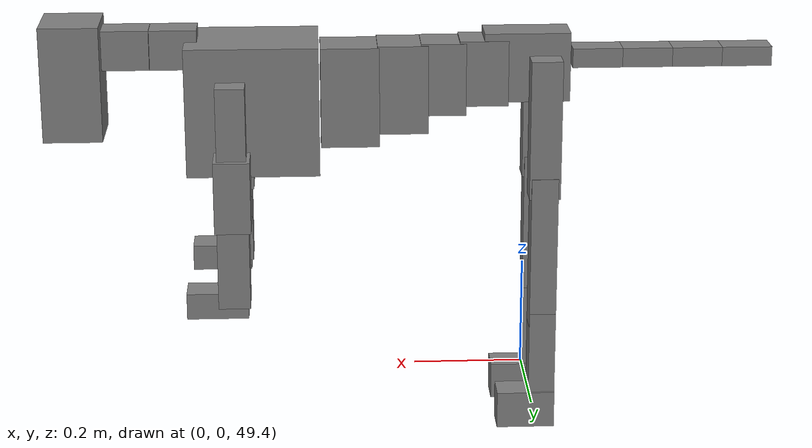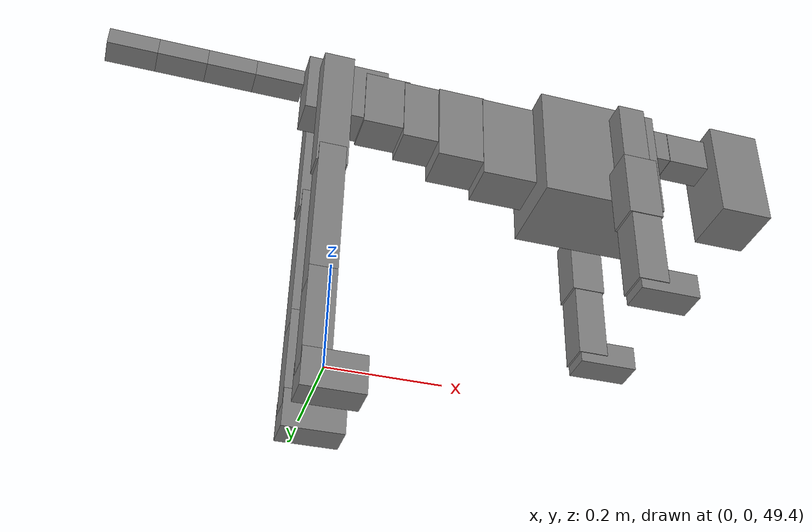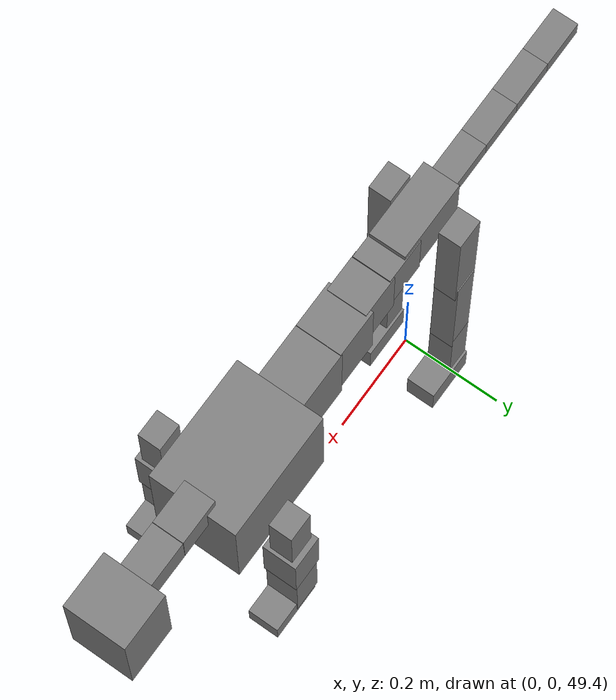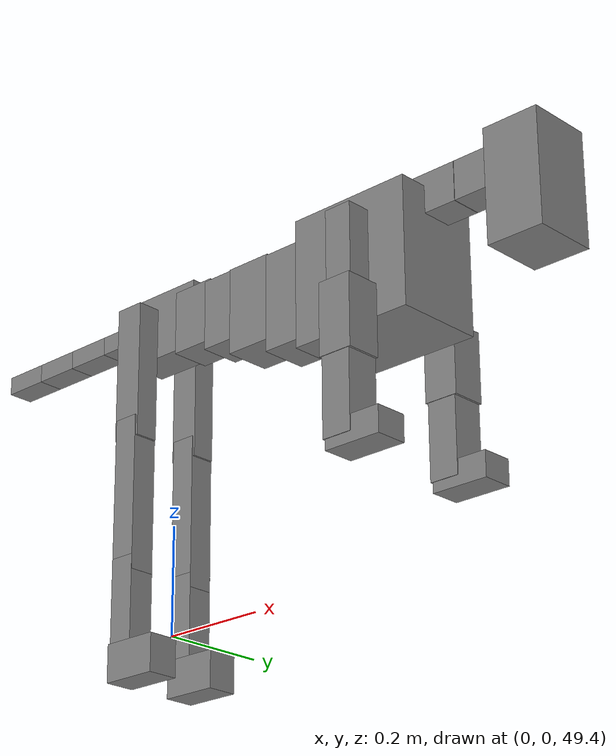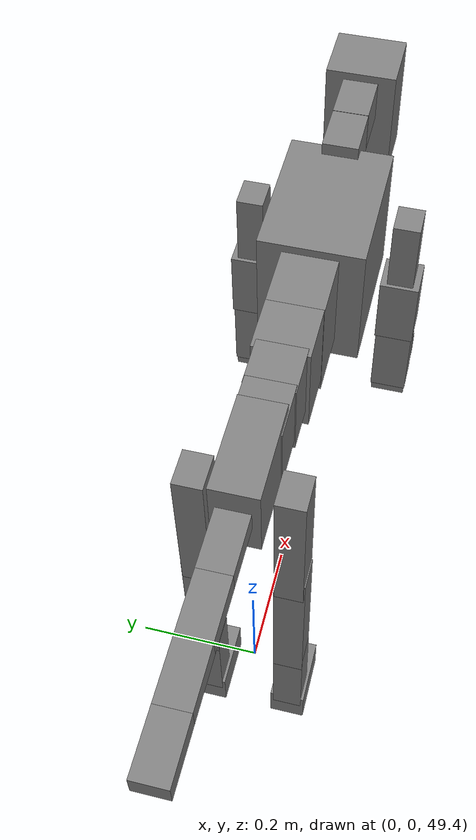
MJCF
<mujoco model="dog">

    <default>
        <joint armature="0.02" stiffness="1" damping="0.2" limited="true"/>
        <geom condim="3" friction="1 0.05 0.05" margin="0.01"/>
        <motor ctrllimited="true" ctrlrange="-1.0 1.0" forcelimited="true" gear="50"/>
    </default>

    <compiler inertiafromgeom="true" angle="radian"/>

    <option timestep="0.016" iterations="50" tolerance="1e-10" solver="Newton" jacobian="dense" cone="pyramidal"/>

    <size nconmax="20000" njmax="60000" nstack="5000000"/>
    <visual>
        <map force="0.1" zfar="30"/>
        <rgba haze="0.15 0.25 0.35 1"/>
        <quality shadowsize="2048"/>
        <global offwidth="800" offheight="800"/>
    </visual>

    <asset>
        <texture type="skybox" builtin="gradient" rgb1="0.3 0.5 0.7" rgb2="0 0 0" width="512" height="512"/>
        <texture name="texplane" type="2d" builtin="checker" rgb1=".2 .3 .4" rgb2=".1 0.15 0.2" width="512" height="512"
                 mark="cross" markrgb=".8 .8 .8"/>
        <texture name="texgeom" type="cube" builtin="flat" mark="cross" width="127" height="1278" rgb1="0.8 0.6 0.4"
                 rgb2="0.8 0.6 0.4" markrgb="1 1 1" random="0.01"/>

        <material name="matplane" reflectance="0.3" texture="texplane" texrepeat="1 1" texuniform="true"/>
        <material name="matgeom" texture="texgeom" texuniform="true" rgba="0.8 0.6 .4 1"/>
    </asset>

    <worldbody>
        <geom name="floor" pos="0 0 0" size="0 0 .25" type="plane" material="matplane" condim="3"/>

        <light directional="false" diffuse=".2 .2 .2" specular="0 0 0" pos="0 0 5" dir="0 0 -1" castshadow="false"/>
        <light mode="targetbodycom" target="torso" directional="false" diffuse=".8 .8 .8" specular="0.3 0.3 0.3"
               pos="0 0 4.0" dir="0 0 -1"/>

        <body name="root" pos="0 0 50">
            <freejoint name="root_1"/>
            <geom type="box" pos="0 0 -0.02" size="0.0774  0.0358  0.063" density="2030"/>

            <body name="spine1" pos="0.054 0 0">
                <joint name="spine1_y" axis="0 1 0" range="0 0.7" limited="true"/>
                <geom type="box" pos="0.02375 0 -0.03" size="0.04375  0.0375  0.05985" density="2030"/>

                <body name="spine2" pos="0.0612 0 0">
                    <joint name="spine2_y" axis="0 1 0" range="-0.15 0.15" limited="true"/>
                    <geom type="box" pos="0.03555  0  -0.04" size="0.04055  0.039  0.06615" density="2030"/>

                    <body name="spine3" pos="0.0730 0 0">
                        <joint name="spine3_y" axis="0 1 0" range="-0.15 0.15" limited="true"/>
                        <geom type="box" pos="0.03555  0  -0.057" size="0.04555  0.0445  0.081" density="2030"/>

                        <body name="spine4" pos="0.0780 0 0">
                            <joint name="spine4_y" axis="0 1 0" range="-0.15 0.15" limited="true"/>
                            <geom type="box" pos="0.05265  0  -0.07" size="0.05265  0.045  0.09135" density="2030"/>

                            <body name="torso" pos="0.1082 0 0">
                                <joint name="torso_y" axis="0 1 0" range="-0.15 0.15" limited="true"/>
                                <geom type="box" pos="0.11925  0  -0.085" size="0.11925  0.085  0.11745"
                                      density="2030"/>

                                <body name="neck1" pos="0.2160  0   0.0180">
                                    <joint name="neck1_y" axis="0 1 0" range="-1.2  -1" limited="true"/>
                                    <geom type="box" pos="0.0423  0  0" size="0.0423  0.03  0.036" density="2325"/>

                                    <body name="neck2" pos="0.0853  0  0">
                                        <joint name="neck2_y" axis="0 1 0" range="0.1  0" limited="true"/>
                                        <geom type="box" pos="0.0423  0  0" size="0.0423  0.03  0.036" density="2325"/>

                                        <body name="head" pos="0.0853  0  0">
                                            <joint name="head_y" axis="0 1 0" range="-0.3  -0.2" limited="true"/>
                                            <geom type="box" pos="0.0531  0  -0.055" size="0.0531  0.06  0.1044"
                                                  density="4030"/>

                                        </body>
                                    </body>
                                </body>

                                <body name="front_shoulder" pos="0.156  0   -0.0480">
                                    <joint name="front_shoulder_y" axis="0 1 0" range="-1 1.5" limited="true"/>
                                    <geom type="box" pos="0 0.13 -0.0525" size="0.0261  0.0223  0.0791" density="1158"/>
                                    <geom type="box" pos="0 -0.13 -0.0525" size="0.0261  0.0223  0.0791"
                                          density="1158"/>

                                    <body name="front_elbow" pos="0  0  -0.1049">
                                        <joint name="front_elbow_y" axis="0 1 0" range="-2 0" limited="true"/>
                                        <geom type="box" pos="0 0.13 -0.0652" size="0.0324  0.0331  0.0652"
                                              density="1081"/>
                                        <geom type="box" pos="0 -0.13 -0.0652" size="0.0324  0.0331  0.0652"
                                              density="1081"/>

                                        <body name="front_wrist" pos="0  0  -0.1305">
                                            <joint name="front_wrist_y" axis="0 1 0" range="-0.2 0" limited="true"/>
                                            <geom type="box" pos="0 0.13 -0.0640" size="0.0285  0.0316  0.0771"
                                                  density="1664"/>
                                            <geom type="box" pos="0 -0.13 -0.0640" size="0.0285  0.0316  0.0771"
                                                  density="1664"/>

                                            <body name="front_finger_end" pos="0  0  -0.1279">
                                                <joint name="front_finger_y" axis="0 1 0" range="-0.4 1"
                                                       limited="true"/>
                                                <geom type="box" pos="0.0300  0.13  -0.0086"
                                                      size="0.0550  0.0300  0.0236" density="1515"/>
                                                <geom type="box" pos="0.0300  -0.13  -0.0086"
                                                      size="0.0550  0.0300  0.0236" density="1515"/>

                                            </body>

                                        </body>
                                    </body>
                                </body>

                            </body>
                        </body>
                    </body>
                </body>
            </body>

            <body name="back_hip" pos="-0.03 0 -0.018">
                <joint name="back_hip_y" axis="0 1 0" range="-1.5 0.3" limited="true"/>
                <geom type="box" pos="0 0.07 -0.1049" size="0.0282  0.0221  0.1277" density="1154"/>
                <geom type="box" pos="0 -0.07 -0.1049" size="0.0282  0.0221  0.1277" density="1154"/>

                <body name="back_knee" pos="0  0  -0.2098">
                    <joint name="back_knee_y" axis="0 1 0" range="0 2.8" limited="true"/>
                    <geom type="box" pos="0 0.07 -0.1273" size="0.0243  0.0240  0.1429" density="1227"/>
                    <geom type="box" pos="0 -0.07 -0.1273" size="0.0243  0.0240  0.1429" density="1227"/>

                    <body name="back_ankle" pos="0  0  -0.2547">
                        <joint name="back_ankle_y" axis="0 1 0" range="-2.2 0" limited="true"/>
                        <geom type="box" pos="0 0.07 -0.0787" size="0.0242  0.0242  0.0900" density="1284"/>
                        <geom type="box" pos="0 -0.07 -0.0787" size="0.0242  0.0242  0.0900" density="1284"/>

                        <body name="back_toe_end" pos="0  0  -0.1574">
                            <joint name="back_toe_y" axis="0 1 0" range="-0.4 1" limited="true"/>
                            <geom type="box" pos="0.0289  0.07  -0.0190" size="0.0530  0.0289  0.0340" density="1515"/>
                            <geom type="box" pos="0.0289  -0.07  -0.0190" size="0.0530  0.0289  0.0340" density="1515"/>

                        </body>
                    </body>
                </body>
            </body>

            <body name="tail1" pos="-0.074 0 -0.006">
                <joint name="tail1_y" axis="0 1 0" range="-0.2 0.2" limited="true"/>
                <geom type="box" pos="-0.0536  0  0" size="0.045  0.025  0.0175" density="1587"/>

                <body name="tail2" pos="-0.09 0 0">
                    <joint name="tail2_y" axis="0 1 0" range="-0.2 0.2" limited="true"/>
                    <geom type="box" pos="-0.0536  0  0" size="0.045  0.025  0.0175" density="1587"/>

                    <body name="tail3" pos="-0.09 0 0">
                        <joint name="tail3_y" axis="0 1 0" range="-0.2 0.2" limited="true"/>
                        <geom type="box" pos="-0.0536  0  0" size="0.045  0.025  0.0175" density="1587"/>

                        <body name="tail4" pos="-0.09 0 0">
                            <joint name="tail4_y" axis="0 1 0" range="-0.2 0.2" limited="true"/>
                            <geom type="box" pos="-0.0536  0  0" size="0.045  0.025  0.0175" density="1587"/>

                        </body>
                    </body>
                </body>
            </body>
        </body>
    </worldbody>

    <actuator>
        <motor joint="spine1_y" forcerange="-150 150     "/>
        <motor joint="spine2_y" forcerange="-150 150     "/>
        <motor joint="spine3_y" forcerange="-150 150     "/>
        <motor joint="spine4_y" forcerange="-150 150     "/>
        <motor joint="torso_y" forcerange="-150 150     "/>
        <motor joint="neck1_y" forcerange="-100 100       "/>
        <motor joint="neck2_y" forcerange="-100 100       "/>
        <motor joint="head_y" forcerange="-150 150       "/>
        <motor joint="front_shoulder_y" forcerange="-122.39 126.31"/>
        <motor joint="front_elbow_y" forcerange="-153.53 187.12"/>
        <motor joint="front_wrist_y" forcerange="-117.10 136.03"/>
        <motor joint="front_finger_y" forcerange="-76.55 43.51"/>
        <motor joint="back_hip_y" forcerange="-285.52 209.52"/>
        <motor joint="back_knee_y" forcerange="-296.92 251.80"/>
        <motor joint="back_angle_y" forcerange="-209.81 77.78"/>
        <motor joint="back_toe_y" forcerange="-80.82 70.36"/>
        <motor joint="tail1_y" forcerange="-50 50     "/>
        <motor joint="tail2_y" forcerange="-50 50     "/>
        <motor joint="tail3_y" forcerange="-50 50     "/>
        <motor joint="tail4_y" forcerange="-50 50     "/>
    </actuator>
</mujoco>
